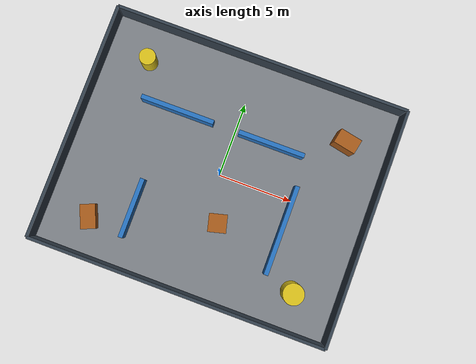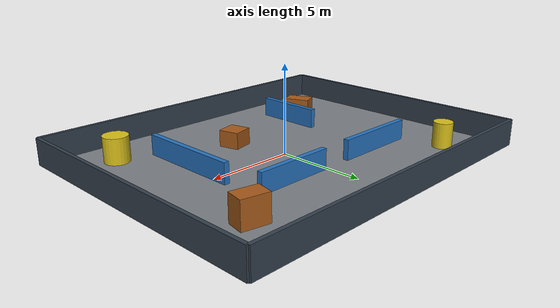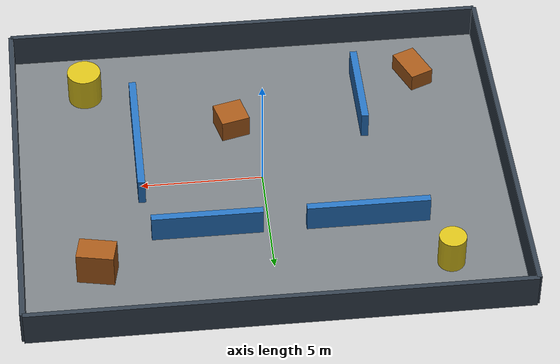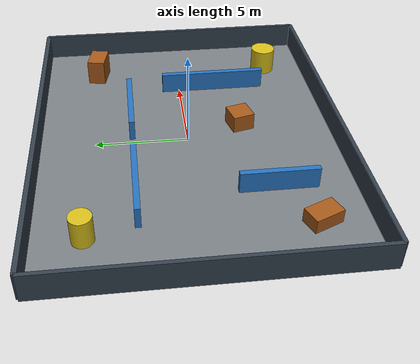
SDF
<?xml version="1.0"?>
<sdf version="1.10">
  <world name="obstacle_course">
    <physics name="default" type="ignored"><max_step_size>0.001</max_step_size><real_time_factor>1.0</real_time_factor></physics>
    <plugin filename="gz-sim-physics-system" name="gz::sim::systems::Physics"/>
    <plugin filename="gz-sim-user-commands-system" name="gz::sim::systems::UserCommands"/>
    <plugin filename="gz-sim-scene-broadcaster-system" name="gz::sim::systems::SceneBroadcaster"/>
    <plugin filename="gz-sim-sensors-system" name="gz::sim::systems::Sensors"><render_engine>ogre2</render_engine></plugin>
    <plugin filename="gz-sim-imu-system" name="gz::sim::systems::Imu"/>
    <!-- Contact system: needed for the six foot contact sensors (limit-switch emulation) in hexapod_description -->
    <plugin filename="gz-sim-contact-system" name="gz::sim::systems::Contact"/>
    <!-- ForceTorque system: joint torque sensors (use_joint_ft in hexapod_description, CoT in hexapod_evaluation) -->
    <plugin filename="gz-sim-forcetorque-system" name="gz::sim::systems::ForceTorque"/>
    <scene><ambient>0.55 0.55 0.55 1</ambient><background>0.75 0.82 0.90 1</background><shadows>true</shadows></scene>
    <light name="sun" type="directional"><pose>0 0 10 0 0 0</pose><cast_shadows>true</cast_shadows><direction>-0.4 0.2 -0.9</direction><diffuse>0.9 0.9 0.9 1</diffuse></light>
    <model name="ground"><static>true</static><link name="link"><collision name="collision"><geometry><box><size>20 16 0.1</size></box></geometry></collision><visual name="visual"><geometry><box><size>20 16 0.1</size></box></geometry><material><diffuse>0.48 0.50 0.52 1</diffuse></material></visual></link></model>
    <model name="boundary_walls"><static>true</static><link name="walls">
      <collision name="north"><pose>0 8 0.75 0 0 0</pose><geometry><box><size>20 0.2 1.5</size></box></geometry></collision><visual name="north_v"><pose>0 8 0.75 0 0 0</pose><geometry><box><size>20 0.2 1.5</size></box></geometry><material><diffuse>0.2 0.25 0.3 1</diffuse></material></visual>
      <collision name="south"><pose>0 -8 0.75 0 0 0</pose><geometry><box><size>20 0.2 1.5</size></box></geometry></collision><visual name="south_v"><pose>0 -8 0.75 0 0 0</pose><geometry><box><size>20 0.2 1.5</size></box></geometry><material><diffuse>0.2 0.25 0.3 1</diffuse></material></visual>
      <collision name="east"><pose>10 0 0.75 0 0 0</pose><geometry><box><size>0.2 16 1.5</size></box></geometry></collision><visual name="east_v"><pose>10 0 0.75 0 0 0</pose><geometry><box><size>0.2 16 1.5</size></box></geometry><material><diffuse>0.2 0.25 0.3 1</diffuse></material></visual>
      <collision name="west"><pose>-10 0 0.75 0 0 0</pose><geometry><box><size>0.2 16 1.5</size></box></geometry></collision><visual name="west_v"><pose>-10 0 0.75 0 0 0</pose><geometry><box><size>0.2 16 1.5</size></box></geometry><material><diffuse>0.2 0.25 0.3 1</diffuse></material></visual>
    </link></model>
    <model name="maze_walls"><static>true</static><link name="walls">
      <collision name="wall_1"><pose>-4 3 0.6 0 0 0</pose><geometry><box><size>5 0.3 1.2</size></box></geometry></collision><visual name="wall_1_v"><pose>-4 3 0.6 0 0 0</pose><geometry><box><size>5 0.3 1.2</size></box></geometry><material><diffuse>0.15 0.45 0.75 1</diffuse></material></visual>
      <collision name="wall_2"><pose>2.5 3 0.6 0 0 0</pose><geometry><box><size>4.5 0.3 1.2</size></box></geometry></collision><visual name="wall_2_v"><pose>2.5 3 0.6 0 0 0</pose><geometry><box><size>4.5 0.3 1.2</size></box></geometry><material><diffuse>0.15 0.45 0.75 1</diffuse></material></visual>
      <collision name="wall_3"><pose>5 -2 0.6 0 0 0</pose><geometry><box><size>0.3 6 1.2</size></box></geometry></collision><visual name="wall_3_v"><pose>5 -2 0.6 0 0 0</pose><geometry><box><size>0.3 6 1.2</size></box></geometry><material><diffuse>0.15 0.45 0.75 1</diffuse></material></visual>
      <collision name="wall_4"><pose>-4.5 -4 0.6 0 0 0</pose><geometry><box><size>0.3 4 1.2</size></box></geometry></collision><visual name="wall_4_v"><pose>-4.5 -4 0.6 0 0 0</pose><geometry><box><size>0.3 4 1.2</size></box></geometry><material><diffuse>0.15 0.45 0.75 1</diffuse></material></visual>
    </link></model>
    <model name="crates"><static>true</static><link name="link">
      <collision name="c1"><pose>1 -3 0.5 0 0 0.25</pose><geometry><box><size>1.2 1.2 1</size></box></geometry></collision><visual name="c1_v"><pose>1 -3 0.5 0 0 0.25</pose><geometry><box><size>1.2 1.2 1</size></box></geometry><material><diffuse>0.65 0.35 0.1 1</diffuse></material></visual>
      <collision name="c2"><pose>7 4.8 0.75 0 0 -0.2</pose><geometry><box><size>1.5 1 1.5</size></box></geometry></collision><visual name="c2_v"><pose>7 4.8 0.75 0 0 -0.2</pose><geometry><box><size>1.5 1 1.5</size></box></geometry><material><diffuse>0.65 0.35 0.1 1</diffuse></material></visual>
      <collision name="c3"><pose>-7 -5.5 0.4 0 0 0.4</pose><geometry><box><size>1 1.6 0.8</size></box></geometry></collision><visual name="c3_v"><pose>-7 -5.5 0.4 0 0 0.4</pose><geometry><box><size>1 1.6 0.8</size></box></geometry><material><diffuse>0.65 0.35 0.1 1</diffuse></material></visual>
    </link></model>
    <model name="pillar_1"><static>true</static><pose>-7 5.5 0 0 0 0</pose><link name="link"><collision name="collision"><pose>0 0 0.75 0 0 0</pose><geometry><cylinder><radius>0.55</radius><length>1.5</length></cylinder></geometry></collision><visual name="visual"><pose>0 0 0.75 0 0 0</pose><geometry><cylinder><radius>0.55</radius><length>1.5</length></cylinder></geometry><material><diffuse>0.85 0.75 0.1 1</diffuse></material></visual></link></model>
    <model name="pillar_2"><static>true</static><pose>7 -5.5 0 0 0 0</pose><link name="link"><collision name="collision"><pose>0 0 0.75 0 0 0</pose><geometry><cylinder><radius>0.7</radius><length>1.5</length></cylinder></geometry></collision><visual name="visual"><pose>0 0 0.75 0 0 0</pose><geometry><cylinder><radius>0.7</radius><length>1.5</length></cylinder></geometry><material><diffuse>0.85 0.75 0.1 1</diffuse></material></visual></link></model>
  </world>
</sdf>
